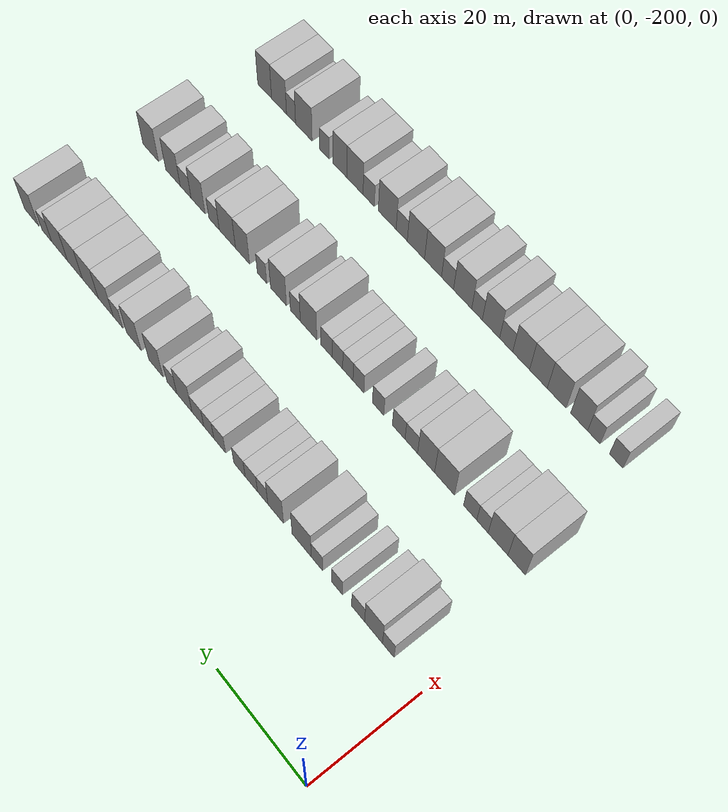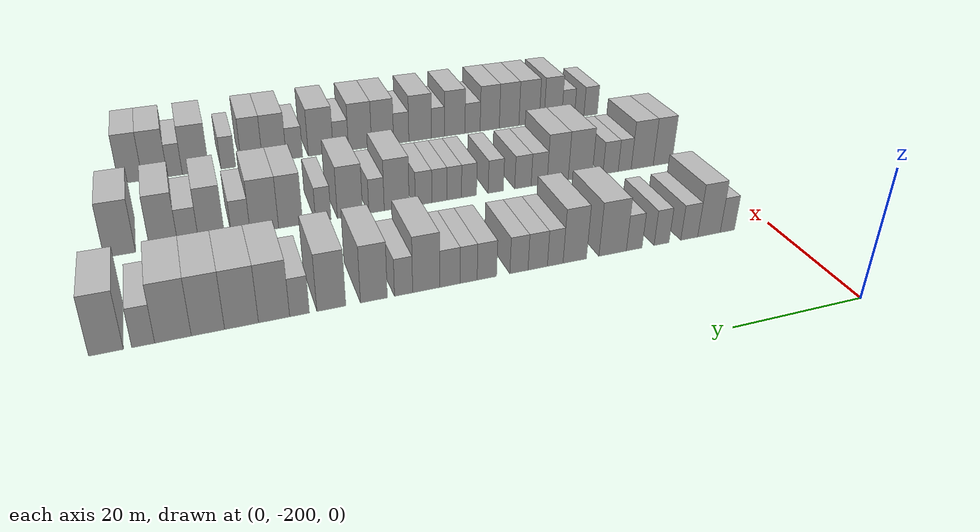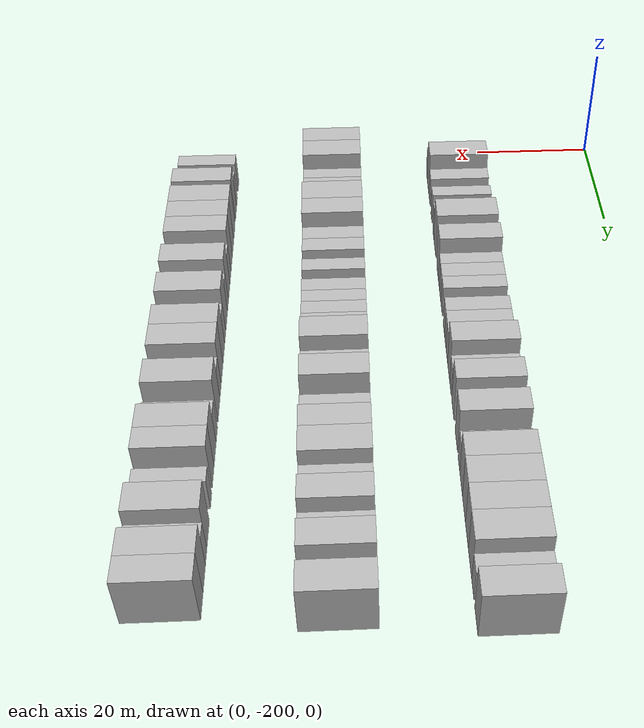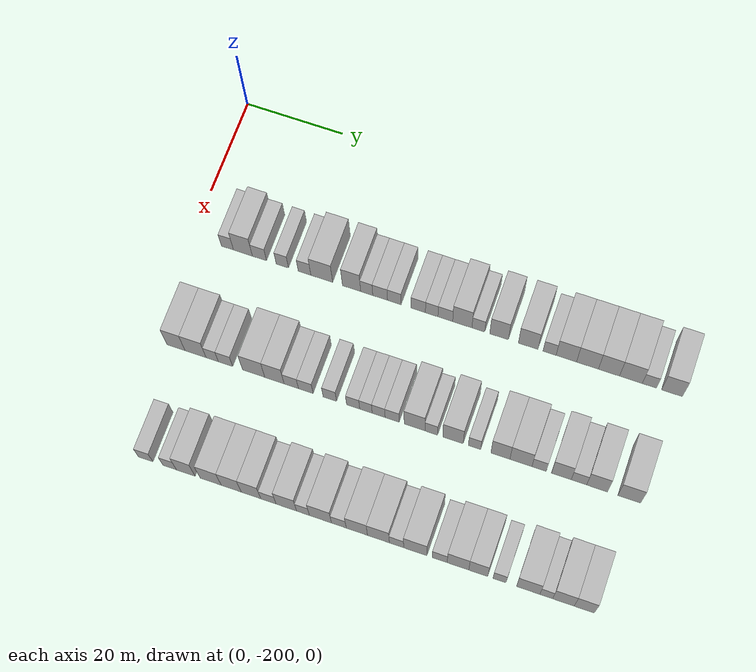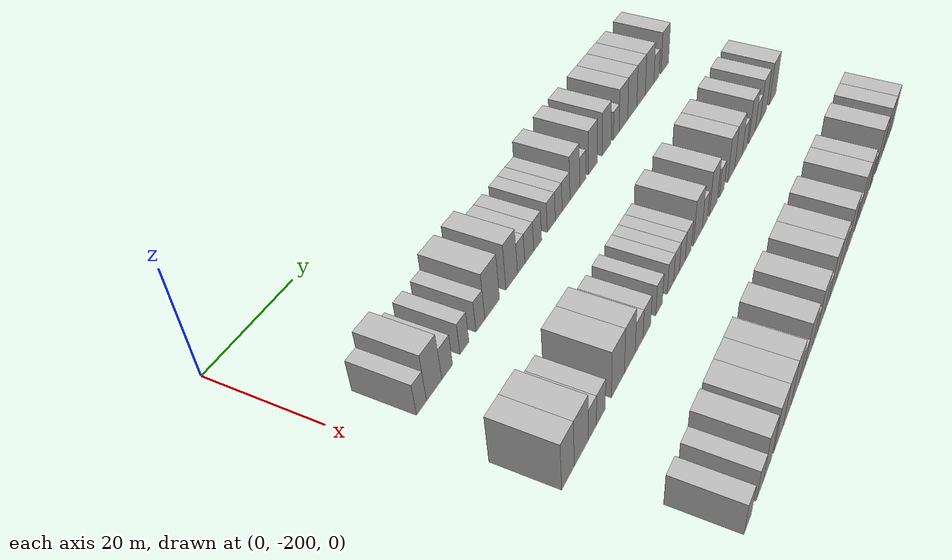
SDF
<sdf version="1.6">
 <world name="default">
  <model name="building_46">
   <static>1</static>
   <pose>25.0000 -192.6730 0 0.000000 0.000000 0.000000</pose>
   <link name="link">
    <pose>0 0 3.00 0 0 0</pose>
    <collision name="collision"><geometry><box><size>10.0000 2.5117 6.0000</size></box></geometry></collision>
    <visual name="visual">
     <cast_shadows>0</cast_shadows>
     <geometry><box><size>10.0000 2.5117 6.0000</size></box></geometry>
     <material>
      <script>
       <uri>model://HANNAS_wall/materials/scripts</uri>
       <uri>model://HANNAS_wall/materials/textures</uri>
       <name>vrc/HANNAS_wall</name>
      </script>
     </material>
    </visual>
   </link>
  </model>
  <model name="building_47">
   <static>1</static>
   <pose>25.0000 -189.4613 0 0.000000 0.000000 0.000000</pose>
   <link name="link">
    <pose>0 0 4.50 0 0 0</pose>
    <collision name="collision"><geometry><box><size>10.0000 3.9117 9.0000</size></box></geometry></collision>
    <visual name="visual">
     <cast_shadows>0</cast_shadows>
     <geometry><box><size>10.0000 3.9117 9.0000</size></box></geometry>
     <material>
      <script>
       <uri>model://HANNAS_wall/materials/scripts</uri>
       <uri>model://HANNAS_wall/materials/textures</uri>
       <name>vrc/HANNAS_wall</name>
      </script>
     </material>
    </visual>
   </link>
  </model>
  <model name="building_48">
   <static>1</static>
   <pose>25.0000 -186.0551 0 0.000000 0.000000 0.000000</pose>
   <link name="link">
    <pose>0 0 3.00 0 0 0</pose>
    <collision name="collision"><geometry><box><size>10.0000 2.9008 6.0000</size></box></geometry></collision>
    <visual name="visual">
     <cast_shadows>0</cast_shadows>
     <geometry><box><size>10.0000 2.9008 6.0000</size></box></geometry>
     <material>
      <script>
       <uri>model://HANNAS_wall/materials/scripts</uri>
       <uri>model://HANNAS_wall/materials/textures</uri>
       <name>vrc/HANNAS_wall</name>
      </script>
     </material>
    </visual>
   </link>
  </model>
  <model name="building_49">
   <static>1</static>
   <pose>25.0000 -181.3485 0 0.000000 0.000000 0.000000</pose>
   <link name="link">
    <pose>0 0 3.00 0 0 0</pose>
    <collision name="collision"><geometry><box><size>10.0000 2.5125 6.0000</size></box></geometry></collision>
    <visual name="visual">
     <cast_shadows>0</cast_shadows>
     <geometry><box><size>10.0000 2.5125 6.0000</size></box></geometry>
     <material>
      <script>
       <uri>model://HANNAS_wall/materials/scripts</uri>
       <uri>model://HANNAS_wall/materials/textures</uri>
       <name>vrc/HANNAS_wall</name>
      </script>
     </material>
    </visual>
   </link>
  </model>
  <model name="building_50">
   <static>1</static>
   <pose>25.0000 -176.7957 0 0.000000 0.000000 0.000000</pose>
   <link name="link">
    <pose>0 0 3.00 0 0 0</pose>
    <collision name="collision"><geometry><box><size>10.0000 2.5931 6.0000</size></box></geometry></collision>
    <visual name="visual">
     <cast_shadows>0</cast_shadows>
     <geometry><box><size>10.0000 2.5931 6.0000</size></box></geometry>
     <material>
      <script>
       <uri>model://HANNAS_wall/materials/scripts</uri>
       <uri>model://HANNAS_wall/materials/textures</uri>
       <name>vrc/HANNAS_wall</name>
      </script>
     </material>
    </visual>
   </link>
  </model>
  <model name="building_51">
   <static>1</static>
   <pose>25.0000 -173.2761 0 0.000000 0.000000 0.000000</pose>
   <link name="link">
    <pose>0 0 4.50 0 0 0</pose>
    <collision name="collision"><geometry><box><size>10.0000 4.4459 9.0000</size></box></geometry></collision>
    <visual name="visual">
     <cast_shadows>0</cast_shadows>
     <geometry><box><size>10.0000 4.4459 9.0000</size></box></geometry>
     <material>
      <script>
       <uri>model://HANNAS_wall/materials/scripts</uri>
       <uri>model://HANNAS_wall/materials/textures</uri>
       <name>vrc/HANNAS_wall</name>
      </script>
     </material>
    </visual>
   </link>
  </model>
  <model name="building_52">
   <static>1</static>
   <pose>25.0000 -167.1985 0 0.000000 0.000000 0.000000</pose>
   <link name="link">
    <pose>0 0 4.50 0 0 0</pose>
    <collision name="collision"><geometry><box><size>10.0000 3.7094 9.0000</size></box></geometry></collision>
    <visual name="visual">
     <cast_shadows>0</cast_shadows>
     <geometry><box><size>10.0000 3.7094 9.0000</size></box></geometry>
     <material>
      <script>
       <uri>model://HANNAS_wall/materials/scripts</uri>
       <uri>model://HANNAS_wall/materials/textures</uri>
       <name>vrc/HANNAS_wall</name>
      </script>
     </material>
    </visual>
   </link>
  </model>
  <model name="building_53">
   <static>1</static>
   <pose>25.0000 -164.1217 0 0.000000 0.000000 0.000000</pose>
   <link name="link">
    <pose>0 0 3.00 0 0 0</pose>
    <collision name="collision"><geometry><box><size>10.0000 2.4442 6.0000</size></box></geometry></collision>
    <visual name="visual">
     <cast_shadows>0</cast_shadows>
     <geometry><box><size>10.0000 2.4442 6.0000</size></box></geometry>
     <material>
      <script>
       <uri>model://HANNAS_wall/materials/scripts</uri>
       <uri>model://HANNAS_wall/materials/textures</uri>
       <name>vrc/HANNAS_wall</name>
      </script>
     </material>
    </visual>
   </link>
  </model>
  <model name="building_54">
   <static>1</static>
   <pose>25.0000 -161.4051 0 0.000000 0.000000 0.000000</pose>
   <link name="link">
    <pose>0 0 3.00 0 0 0</pose>
    <collision name="collision"><geometry><box><size>10.0000 2.9888 6.0000</size></box></geometry></collision>
    <visual name="visual">
     <cast_shadows>0</cast_shadows>
     <geometry><box><size>10.0000 2.9888 6.0000</size></box></geometry>
     <material>
      <script>
       <uri>model://HANNAS_wall/materials/scripts</uri>
       <uri>model://HANNAS_wall/materials/textures</uri>
       <name>vrc/HANNAS_wall</name>
      </script>
     </material>
    </visual>
   </link>
  </model>
  <model name="building_55">
   <static>1</static>
   <pose>25.0000 -158.5288 0 0.000000 0.000000 0.000000</pose>
   <link name="link">
    <pose>0 0 3.00 0 0 0</pose>
    <collision name="collision"><geometry><box><size>10.0000 2.7638 6.0000</size></box></geometry></collision>
    <visual name="visual">
     <cast_shadows>0</cast_shadows>
     <geometry><box><size>10.0000 2.7638 6.0000</size></box></geometry>
     <material>
      <script>
       <uri>model://HANNAS_wall/materials/scripts</uri>
       <uri>model://HANNAS_wall/materials/textures</uri>
       <name>vrc/HANNAS_wall</name>
      </script>
     </material>
    </visual>
   </link>
  </model>
  <model name="building_56">
   <static>1</static>
   <pose>25.0000 -153.6962 0 0.000000 0.000000 0.000000</pose>
   <link name="link">
    <pose>0 0 3.00 0 0 0</pose>
    <collision name="collision"><geometry><box><size>10.0000 2.9015 6.0000</size></box></geometry></collision>
    <visual name="visual">
     <cast_shadows>0</cast_shadows>
     <geometry><box><size>10.0000 2.9015 6.0000</size></box></geometry>
     <material>
      <script>
       <uri>model://HANNAS_wall/materials/scripts</uri>
       <uri>model://HANNAS_wall/materials/textures</uri>
       <name>vrc/HANNAS_wall</name>
      </script>
     </material>
    </visual>
   </link>
  </model>
  <model name="building_57">
   <static>1</static>
   <pose>25.0000 -150.9907 0 0.000000 0.000000 0.000000</pose>
   <link name="link">
    <pose>0 0 3.00 0 0 0</pose>
    <collision name="collision"><geometry><box><size>10.0000 2.5095 6.0000</size></box></geometry></collision>
    <visual name="visual">
     <cast_shadows>0</cast_shadows>
     <geometry><box><size>10.0000 2.5095 6.0000</size></box></geometry>
     <material>
      <script>
       <uri>model://HANNAS_wall/materials/scripts</uri>
       <uri>model://HANNAS_wall/materials/textures</uri>
       <name>vrc/HANNAS_wall</name>
      </script>
     </material>
    </visual>
   </link>
  </model>
  <model name="building_58">
   <static>1</static>
   <pose>25.0000 -148.2503 0 0.000000 0.000000 0.000000</pose>
   <link name="link">
    <pose>0 0 3.00 0 0 0</pose>
    <collision name="collision"><geometry><box><size>10.0000 2.9712 6.0000</size></box></geometry></collision>
    <visual name="visual">
     <cast_shadows>0</cast_shadows>
     <geometry><box><size>10.0000 2.9712 6.0000</size></box></geometry>
     <material>
      <script>
       <uri>model://HANNAS_wall/materials/scripts</uri>
       <uri>model://HANNAS_wall/materials/textures</uri>
       <name>vrc/HANNAS_wall</name>
      </script>
     </material>
    </visual>
   </link>
  </model>
  <model name="building_59">
   <static>1</static>
   <pose>25.0000 -144.8352 0 0.000000 0.000000 0.000000</pose>
   <link name="link">
    <pose>0 0 4.50 0 0 0</pose>
    <collision name="collision"><geometry><box><size>10.0000 3.8591 9.0000</size></box></geometry></collision>
    <visual name="visual">
     <cast_shadows>0</cast_shadows>
     <geometry><box><size>10.0000 3.8591 9.0000</size></box></geometry>
     <material>
      <script>
       <uri>model://HANNAS_wall/materials/scripts</uri>
       <uri>model://HANNAS_wall/materials/textures</uri>
       <name>vrc/HANNAS_wall</name>
      </script>
     </material>
    </visual>
   </link>
  </model>
  <model name="building_60">
   <static>1</static>
   <pose>25.0000 -141.6266 0 0.000000 0.000000 0.000000</pose>
   <link name="link">
    <pose>0 0 3.00 0 0 0</pose>
    <collision name="collision"><geometry><box><size>10.0000 2.5581 6.0000</size></box></geometry></collision>
    <visual name="visual">
     <cast_shadows>0</cast_shadows>
     <geometry><box><size>10.0000 2.5581 6.0000</size></box></geometry>
     <material>
      <script>
       <uri>model://HANNAS_wall/materials/scripts</uri>
       <uri>model://HANNAS_wall/materials/textures</uri>
       <name>vrc/HANNAS_wall</name>
      </script>
     </material>
    </visual>
   </link>
  </model>
  <model name="building_61">
   <static>1</static>
   <pose>25.0000 -137.4888 0 0.000000 0.000000 0.000000</pose>
   <link name="link">
    <pose>0 0 4.50 0 0 0</pose>
    <collision name="collision"><geometry><box><size>10.0000 3.7174 9.0000</size></box></geometry></collision>
    <visual name="visual">
     <cast_shadows>0</cast_shadows>
     <geometry><box><size>10.0000 3.7174 9.0000</size></box></geometry>
     <material>
      <script>
       <uri>model://HANNAS_wall/materials/scripts</uri>
       <uri>model://HANNAS_wall/materials/textures</uri>
       <name>vrc/HANNAS_wall</name>
      </script>
     </material>
    </visual>
   </link>
  </model>
  <model name="building_62">
   <static>1</static>
   <pose>25.0000 -131.6830 0 0.000000 0.000000 0.000000</pose>
   <link name="link">
    <pose>0 0 4.50 0 0 0</pose>
    <collision name="collision"><geometry><box><size>10.0000 3.8944 9.0000</size></box></geometry></collision>
    <visual name="visual">
     <cast_shadows>0</cast_shadows>
     <geometry><box><size>10.0000 3.8944 9.0000</size></box></geometry>
     <material>
      <script>
       <uri>model://HANNAS_wall/materials/scripts</uri>
       <uri>model://HANNAS_wall/materials/textures</uri>
       <name>vrc/HANNAS_wall</name>
      </script>
     </material>
    </visual>
   </link>
  </model>
  <model name="building_63">
   <static>1</static>
   <pose>25.0000 -127.4365 0 0.000000 0.000000 0.000000</pose>
   <link name="link">
    <pose>0 0 3.00 0 0 0</pose>
    <collision name="collision"><geometry><box><size>10.0000 2.5986 6.0000</size></box></geometry></collision>
    <visual name="visual">
     <cast_shadows>0</cast_shadows>
     <geometry><box><size>10.0000 2.5986 6.0000</size></box></geometry>
     <material>
      <script>
       <uri>model://HANNAS_wall/materials/scripts</uri>
       <uri>model://HANNAS_wall/materials/textures</uri>
       <name>vrc/HANNAS_wall</name>
      </script>
     </material>
    </visual>
   </link>
  </model>
  <model name="building_64">
   <static>1</static>
   <pose>25.0000 -124.1150 0 0.000000 0.000000 0.000000</pose>
   <link name="link">
    <pose>0 0 4.50 0 0 0</pose>
    <collision name="collision"><geometry><box><size>10.0000 4.0444 9.0000</size></box></geometry></collision>
    <visual name="visual">
     <cast_shadows>0</cast_shadows>
     <geometry><box><size>10.0000 4.0444 9.0000</size></box></geometry>
     <material>
      <script>
       <uri>model://HANNAS_wall/materials/scripts</uri>
       <uri>model://HANNAS_wall/materials/textures</uri>
       <name>vrc/HANNAS_wall</name>
      </script>
     </material>
    </visual>
   </link>
  </model>
  <model name="building_65">
   <static>1</static>
   <pose>25.0000 -119.9322 0 0.000000 0.000000 0.000000</pose>
   <link name="link">
    <pose>0 0 4.50 0 0 0</pose>
    <collision name="collision"><geometry><box><size>10.0000 4.3210 9.0000</size></box></geometry></collision>
    <visual name="visual">
     <cast_shadows>0</cast_shadows>
     <geometry><box><size>10.0000 4.3210 9.0000</size></box></geometry>
     <material>
      <script>
       <uri>model://HANNAS_wall/materials/scripts</uri>
       <uri>model://HANNAS_wall/materials/textures</uri>
       <name>vrc/HANNAS_wall</name>
      </script>
     </material>
    </visual>
   </link>
  </model>
  <model name="building_66">
   <static>1</static>
   <pose>25.0000 -115.6959 0 0.000000 0.000000 0.000000</pose>
   <link name="link">
    <pose>0 0 4.50 0 0 0</pose>
    <collision name="collision"><geometry><box><size>10.0000 4.1516 9.0000</size></box></geometry></collision>
    <visual name="visual">
     <cast_shadows>0</cast_shadows>
     <geometry><box><size>10.0000 4.1516 9.0000</size></box></geometry>
     <material>
      <script>
       <uri>model://HANNAS_wall/materials/scripts</uri>
       <uri>model://HANNAS_wall/materials/textures</uri>
       <name>vrc/HANNAS_wall</name>
      </script>
     </material>
    </visual>
   </link>
  </model>
  <model name="building_67">
   <static>1</static>
   <pose>25.0000 -111.3855 0 0.000000 0.000000 0.000000</pose>
   <link name="link">
    <pose>0 0 4.50 0 0 0</pose>
    <collision name="collision"><geometry><box><size>10.0000 4.4691 9.0000</size></box></geometry></collision>
    <visual name="visual">
     <cast_shadows>0</cast_shadows>
     <geometry><box><size>10.0000 4.4691 9.0000</size></box></geometry>
     <material>
      <script>
       <uri>model://HANNAS_wall/materials/scripts</uri>
       <uri>model://HANNAS_wall/materials/textures</uri>
       <name>vrc/HANNAS_wall</name>
      </script>
     </material>
    </visual>
   </link>
  </model>
  <model name="building_68">
   <static>1</static>
   <pose>25.0000 -107.7723 0 0.000000 0.000000 0.000000</pose>
   <link name="link">
    <pose>0 0 3.00 0 0 0</pose>
    <collision name="collision"><geometry><box><size>10.0000 2.7573 6.0000</size></box></geometry></collision>
    <visual name="visual">
     <cast_shadows>0</cast_shadows>
     <geometry><box><size>10.0000 2.7573 6.0000</size></box></geometry>
     <material>
      <script>
       <uri>model://HANNAS_wall/materials/scripts</uri>
       <uri>model://HANNAS_wall/materials/textures</uri>
       <name>vrc/HANNAS_wall</name>
      </script>
     </material>
    </visual>
   </link>
  </model>
  <model name="building_69">
   <static>1</static>
   <pose>25.0000 -103.3533 0 0.000000 0.000000 0.000000</pose>
   <link name="link">
    <pose>0 0 4.50 0 0 0</pose>
    <collision name="collision"><geometry><box><size>10.0000 4.0808 9.0000</size></box></geometry></collision>
    <visual name="visual">
     <cast_shadows>0</cast_shadows>
     <geometry><box><size>10.0000 4.0808 9.0000</size></box></geometry>
     <material>
      <script>
       <uri>model://HANNAS_wall/materials/scripts</uri>
       <uri>model://HANNAS_wall/materials/textures</uri>
       <name>vrc/HANNAS_wall</name>
      </script>
     </material>
    </visual>
   </link>
  </model>
  <model name="building_231">
   <static>1</static>
   <pose>47.0000 -194.5947 0 0.000000 0.000000 0.000000</pose>
   <link name="link">
    <pose>0 0 4.50 0 0 0</pose>
    <collision name="collision"><geometry><box><size>10.0000 3.6940 9.0000</size></box></geometry></collision>
    <visual name="visual">
     <cast_shadows>0</cast_shadows>
     <geometry><box><size>10.0000 3.6940 9.0000</size></box></geometry>
     <material>
      <script>
       <uri>model://HANNAS_wall/materials/scripts</uri>
       <uri>model://HANNAS_wall/materials/textures</uri>
       <name>vrc/HANNAS_wall</name>
      </script>
     </material>
    </visual>
   </link>
  </model>
  <model name="building_232">
   <static>1</static>
   <pose>47.0000 -190.6087 0 0.000000 0.000000 0.000000</pose>
   <link name="link">
    <pose>0 0 4.50 0 0 0</pose>
    <collision name="collision"><geometry><box><size>10.0000 4.2780 9.0000</size></box></geometry></collision>
    <visual name="visual">
     <cast_shadows>0</cast_shadows>
     <geometry><box><size>10.0000 4.2780 9.0000</size></box></geometry>
     <material>
      <script>
       <uri>model://HANNAS_wall/materials/scripts</uri>
       <uri>model://HANNAS_wall/materials/textures</uri>
       <name>vrc/HANNAS_wall</name>
      </script>
     </material>
    </visual>
   </link>
  </model>
  <model name="building_233">
   <static>1</static>
   <pose>47.0000 -187.2302 0 0.000000 0.000000 0.000000</pose>
   <link name="link">
    <pose>0 0 3.00 0 0 0</pose>
    <collision name="collision"><geometry><box><size>10.0000 2.4789 6.0000</size></box></geometry></collision>
    <visual name="visual">
     <cast_shadows>0</cast_shadows>
     <geometry><box><size>10.0000 2.4789 6.0000</size></box></geometry>
     <material>
      <script>
       <uri>model://HANNAS_wall/materials/scripts</uri>
       <uri>model://HANNAS_wall/materials/textures</uri>
       <name>vrc/HANNAS_wall</name>
      </script>
     </material>
    </visual>
   </link>
  </model>
  <model name="building_234">
   <static>1</static>
   <pose>47.0000 -184.5404 0 0.000000 0.000000 0.000000</pose>
   <link name="link">
    <pose>0 0 3.00 0 0 0</pose>
    <collision name="collision"><geometry><box><size>10.0000 2.9007 6.0000</size></box></geometry></collision>
    <visual name="visual">
     <cast_shadows>0</cast_shadows>
     <geometry><box><size>10.0000 2.9007 6.0000</size></box></geometry>
     <material>
      <script>
       <uri>model://HANNAS_wall/materials/scripts</uri>
       <uri>model://HANNAS_wall/materials/textures</uri>
       <name>vrc/HANNAS_wall</name>
      </script>
     </material>
    </visual>
   </link>
  </model>
  <model name="building_235">
   <static>1</static>
   <pose>47.0000 -178.8547 0 0.000000 0.000000 0.000000</pose>
   <link name="link">
    <pose>0 0 4.50 0 0 0</pose>
    <collision name="collision"><geometry><box><size>10.0000 4.4707 9.0000</size></box></geometry></collision>
    <visual name="visual">
     <cast_shadows>0</cast_shadows>
     <geometry><box><size>10.0000 4.4707 9.0000</size></box></geometry>
     <material>
      <script>
       <uri>model://HANNAS_wall/materials/scripts</uri>
       <uri>model://HANNAS_wall/materials/textures</uri>
       <name>vrc/HANNAS_wall</name>
      </script>
     </material>
    </visual>
   </link>
  </model>
  <model name="building_236">
   <static>1</static>
   <pose>47.0000 -174.6920 0 0.000000 0.000000 0.000000</pose>
   <link name="link">
    <pose>0 0 4.50 0 0 0</pose>
    <collision name="collision"><geometry><box><size>10.0000 3.8547 9.0000</size></box></geometry></collision>
    <visual name="visual">
     <cast_shadows>0</cast_shadows>
     <geometry><box><size>10.0000 3.8547 9.0000</size></box></geometry>
     <material>
      <script>
       <uri>model://HANNAS_wall/materials/scripts</uri>
       <uri>model://HANNAS_wall/materials/textures</uri>
       <name>vrc/HANNAS_wall</name>
      </script>
     </material>
    </visual>
   </link>
  </model>
  <model name="building_237">
   <static>1</static>
   <pose>47.0000 -171.3256 0 0.000000 0.000000 0.000000</pose>
   <link name="link">
    <pose>0 0 3.00 0 0 0</pose>
    <collision name="collision"><geometry><box><size>10.0000 2.8782 6.0000</size></box></geometry></collision>
    <visual name="visual">
     <cast_shadows>0</cast_shadows>
     <geometry><box><size>10.0000 2.8782 6.0000</size></box></geometry>
     <material>
      <script>
       <uri>model://HANNAS_wall/materials/scripts</uri>
       <uri>model://HANNAS_wall/materials/textures</uri>
       <name>vrc/HANNAS_wall</name>
      </script>
     </material>
    </visual>
   </link>
  </model>
  <model name="building_238">
   <static>1</static>
   <pose>47.0000 -168.4165 0 0.000000 0.000000 0.000000</pose>
   <link name="link">
    <pose>0 0 3.00 0 0 0</pose>
    <collision name="collision"><geometry><box><size>10.0000 2.9399 6.0000</size></box></geometry></collision>
    <visual name="visual">
     <cast_shadows>0</cast_shadows>
     <geometry><box><size>10.0000 2.9399 6.0000</size></box></geometry>
     <material>
      <script>
       <uri>model://HANNAS_wall/materials/scripts</uri>
       <uri>model://HANNAS_wall/materials/textures</uri>
       <name>vrc/HANNAS_wall</name>
      </script>
     </material>
    </visual>
   </link>
  </model>
  <model name="building_239">
   <static>1</static>
   <pose>47.0000 -163.6091 0 0.000000 0.000000 0.000000</pose>
   <link name="link">
    <pose>0 0 3.00 0 0 0</pose>
    <collision name="collision"><geometry><box><size>10.0000 2.6749 6.0000</size></box></geometry></collision>
    <visual name="visual">
     <cast_shadows>0</cast_shadows>
     <geometry><box><size>10.0000 2.6749 6.0000</size></box></geometry>
     <material>
      <script>
       <uri>model://HANNAS_wall/materials/scripts</uri>
       <uri>model://HANNAS_wall/materials/textures</uri>
       <name>vrc/HANNAS_wall</name>
      </script>
     </material>
    </visual>
   </link>
  </model>
  <model name="building_240">
   <static>1</static>
   <pose>47.0000 -158.9659 0 0.000000 0.000000 0.000000</pose>
   <link name="link">
    <pose>0 0 3.00 0 0 0</pose>
    <collision name="collision"><geometry><box><size>10.0000 2.6115 6.0000</size></box></geometry></collision>
    <visual name="visual">
     <cast_shadows>0</cast_shadows>
     <geometry><box><size>10.0000 2.6115 6.0000</size></box></geometry>
     <material>
      <script>
       <uri>model://HANNAS_wall/materials/scripts</uri>
       <uri>model://HANNAS_wall/materials/textures</uri>
       <name>vrc/HANNAS_wall</name>
      </script>
     </material>
    </visual>
   </link>
  </model>
  <model name="building_241">
   <static>1</static>
   <pose>47.0000 -156.4249 0 0.000000 0.000000 0.000000</pose>
   <link name="link">
    <pose>0 0 3.00 0 0 0</pose>
    <collision name="collision"><geometry><box><size>10.0000 2.4706 6.0000</size></box></geometry></collision>
    <visual name="visual">
     <cast_shadows>0</cast_shadows>
     <geometry><box><size>10.0000 2.4706 6.0000</size></box></geometry>
     <material>
      <script>
       <uri>model://HANNAS_wall/materials/scripts</uri>
       <uri>model://HANNAS_wall/materials/textures</uri>
       <name>vrc/HANNAS_wall</name>
      </script>
     </material>
    </visual>
   </link>
  </model>
  <model name="building_242">
   <static>1</static>
   <pose>47.0000 -153.9104 0 0.000000 0.000000 0.000000</pose>
   <link name="link">
    <pose>0 0 3.00 0 0 0</pose>
    <collision name="collision"><geometry><box><size>10.0000 2.5585 6.0000</size></box></geometry></collision>
    <visual name="visual">
     <cast_shadows>0</cast_shadows>
     <geometry><box><size>10.0000 2.5585 6.0000</size></box></geometry>
     <material>
      <script>
       <uri>model://HANNAS_wall/materials/scripts</uri>
       <uri>model://HANNAS_wall/materials/textures</uri>
       <name>vrc/HANNAS_wall</name>
      </script>
     </material>
    </visual>
   </link>
  </model>
  <model name="building_243">
   <static>1</static>
   <pose>47.0000 -151.2442 0 0.000000 0.000000 0.000000</pose>
   <link name="link">
    <pose>0 0 3.00 0 0 0</pose>
    <collision name="collision"><geometry><box><size>10.0000 2.7740 6.0000</size></box></geometry></collision>
    <visual name="visual">
     <cast_shadows>0</cast_shadows>
     <geometry><box><size>10.0000 2.7740 6.0000</size></box></geometry>
     <material>
      <script>
       <uri>model://HANNAS_wall/materials/scripts</uri>
       <uri>model://HANNAS_wall/materials/textures</uri>
       <name>vrc/HANNAS_wall</name>
      </script>
     </material>
    </visual>
   </link>
  </model>
  <model name="building_244">
   <static>1</static>
   <pose>47.0000 -146.8153 0 0.000000 0.000000 0.000000</pose>
   <link name="link">
    <pose>0 0 4.50 0 0 0</pose>
    <collision name="collision"><geometry><box><size>10.0000 4.0838 9.0000</size></box></geometry></collision>
    <visual name="visual">
     <cast_shadows>0</cast_shadows>
     <geometry><box><size>10.0000 4.0838 9.0000</size></box></geometry>
     <material>
      <script>
       <uri>model://HANNAS_wall/materials/scripts</uri>
       <uri>model://HANNAS_wall/materials/textures</uri>
       <name>vrc/HANNAS_wall</name>
      </script>
     </material>
    </visual>
   </link>
  </model>
  <model name="building_245">
   <static>1</static>
   <pose>47.0000 -143.5286 0 0.000000 0.000000 0.000000</pose>
   <link name="link">
    <pose>0 0 3.00 0 0 0</pose>
    <collision name="collision"><geometry><box><size>10.0000 2.4895 6.0000</size></box></geometry></collision>
    <visual name="visual">
     <cast_shadows>0</cast_shadows>
     <geometry><box><size>10.0000 2.4895 6.0000</size></box></geometry>
     <material>
      <script>
       <uri>model://HANNAS_wall/materials/scripts</uri>
       <uri>model://HANNAS_wall/materials/textures</uri>
       <name>vrc/HANNAS_wall</name>
      </script>
     </material>
    </visual>
   </link>
  </model>
  <model name="building_246">
   <static>1</static>
   <pose>47.0000 -139.2747 0 0.000000 0.000000 0.000000</pose>
   <link name="link">
    <pose>0 0 4.50 0 0 0</pose>
    <collision name="collision"><geometry><box><size>10.0000 4.0185 9.0000</size></box></geometry></collision>
    <visual name="visual">
     <cast_shadows>0</cast_shadows>
     <geometry><box><size>10.0000 4.0185 9.0000</size></box></geometry>
     <material>
      <script>
       <uri>model://HANNAS_wall/materials/scripts</uri>
       <uri>model://HANNAS_wall/materials/textures</uri>
       <name>vrc/HANNAS_wall</name>
      </script>
     </material>
    </visual>
   </link>
  </model>
  <model name="building_247">
   <static>1</static>
   <pose>47.0000 -135.0592 0 0.000000 0.000000 0.000000</pose>
   <link name="link">
    <pose>0 0 3.00 0 0 0</pose>
    <collision name="collision"><geometry><box><size>10.0000 2.4124 6.0000</size></box></geometry></collision>
    <visual name="visual">
     <cast_shadows>0</cast_shadows>
     <geometry><box><size>10.0000 2.4124 6.0000</size></box></geometry>
     <material>
      <script>
       <uri>model://HANNAS_wall/materials/scripts</uri>
       <uri>model://HANNAS_wall/materials/textures</uri>
       <name>vrc/HANNAS_wall</name>
      </script>
     </material>
    </visual>
   </link>
  </model>
  <model name="building_248">
   <static>1</static>
   <pose>47.0000 -130.0013 0 0.000000 0.000000 0.000000</pose>
   <link name="link">
    <pose>0 0 4.50 0 0 0</pose>
    <collision name="collision"><geometry><box><size>10.0000 3.7034 9.0000</size></box></geometry></collision>
    <visual name="visual">
     <cast_shadows>0</cast_shadows>
     <geometry><box><size>10.0000 3.7034 9.0000</size></box></geometry>
     <material>
      <script>
       <uri>model://HANNAS_wall/materials/scripts</uri>
       <uri>model://HANNAS_wall/materials/textures</uri>
       <name>vrc/HANNAS_wall</name>
      </script>
     </material>
    </visual>
   </link>
  </model>
  <model name="building_249">
   <static>1</static>
   <pose>47.0000 -126.0079 0 0.000000 0.000000 0.000000</pose>
   <link name="link">
    <pose>0 0 4.50 0 0 0</pose>
    <collision name="collision"><geometry><box><size>10.0000 4.2836 9.0000</size></box></geometry></collision>
    <visual name="visual">
     <cast_shadows>0</cast_shadows>
     <geometry><box><size>10.0000 4.2836 9.0000</size></box></geometry>
     <material>
      <script>
       <uri>model://HANNAS_wall/materials/scripts</uri>
       <uri>model://HANNAS_wall/materials/textures</uri>
       <name>vrc/HANNAS_wall</name>
      </script>
     </material>
    </visual>
   </link>
  </model>
  <model name="building_250">
   <static>1</static>
   <pose>47.0000 -122.4765 0 0.000000 0.000000 0.000000</pose>
   <link name="link">
    <pose>0 0 3.00 0 0 0</pose>
    <collision name="collision"><geometry><box><size>10.0000 2.7792 6.0000</size></box></geometry></collision>
    <visual name="visual">
     <cast_shadows>0</cast_shadows>
     <geometry><box><size>10.0000 2.7792 6.0000</size></box></geometry>
     <material>
      <script>
       <uri>model://HANNAS_wall/materials/scripts</uri>
       <uri>model://HANNAS_wall/materials/textures</uri>
       <name>vrc/HANNAS_wall</name>
      </script>
     </material>
    </visual>
   </link>
  </model>
  <model name="building_251">
   <static>1</static>
   <pose>47.0000 -118.1774 0 0.000000 0.000000 0.000000</pose>
   <link name="link">
    <pose>0 0 4.50 0 0 0</pose>
    <collision name="collision"><geometry><box><size>10.0000 3.8190 9.0000</size></box></geometry></collision>
    <visual name="visual">
     <cast_shadows>0</cast_shadows>
     <geometry><box><size>10.0000 3.8190 9.0000</size></box></geometry>
     <material>
      <script>
       <uri>model://HANNAS_wall/materials/scripts</uri>
       <uri>model://HANNAS_wall/materials/textures</uri>
       <name>vrc/HANNAS_wall</name>
      </script>
     </material>
    </visual>
   </link>
  </model>
  <model name="building_252">
   <static>1</static>
   <pose>47.0000 -114.7752 0 0.000000 0.000000 0.000000</pose>
   <link name="link">
    <pose>0 0 3.00 0 0 0</pose>
    <collision name="collision"><geometry><box><size>10.0000 2.9853 6.0000</size></box></geometry></collision>
    <visual name="visual">
     <cast_shadows>0</cast_shadows>
     <geometry><box><size>10.0000 2.9853 6.0000</size></box></geometry>
     <material>
      <script>
       <uri>model://HANNAS_wall/materials/scripts</uri>
       <uri>model://HANNAS_wall/materials/textures</uri>
       <name>vrc/HANNAS_wall</name>
      </script>
     </material>
    </visual>
   </link>
  </model>
  <model name="building_253">
   <static>1</static>
   <pose>47.0000 -111.2822 0 0.000000 0.000000 0.000000</pose>
   <link name="link">
    <pose>0 0 4.50 0 0 0</pose>
    <collision name="collision"><geometry><box><size>10.0000 4.0008 9.0000</size></box></geometry></collision>
    <visual name="visual">
     <cast_shadows>0</cast_shadows>
     <geometry><box><size>10.0000 4.0008 9.0000</size></box></geometry>
     <material>
      <script>
       <uri>model://HANNAS_wall/materials/scripts</uri>
       <uri>model://HANNAS_wall/materials/textures</uri>
       <name>vrc/HANNAS_wall</name>
      </script>
     </material>
    </visual>
   </link>
  </model>
  <model name="building_254">
   <static>1</static>
   <pose>47.0000 -105.0933 0 0.000000 0.000000 0.000000</pose>
   <link name="link">
    <pose>0 0 4.50 0 0 0</pose>
    <collision name="collision"><geometry><box><size>10.0000 4.3769 9.0000</size></box></geometry></collision>
    <visual name="visual">
     <cast_shadows>0</cast_shadows>
     <geometry><box><size>10.0000 4.3769 9.0000</size></box></geometry>
     <material>
      <script>
       <uri>model://HANNAS_wall/materials/scripts</uri>
       <uri>model://HANNAS_wall/materials/textures</uri>
       <name>vrc/HANNAS_wall</name>
      </script>
     </material>
    </visual>
   </link>
  </model>
  <model name="building_423">
   <static>1</static>
   <pose>69.0000 -191.8491 0 0.000000 0.000000 0.000000</pose>
   <link name="link">
    <pose>0 0 3.00 0 0 0</pose>
    <collision name="collision"><geometry><box><size>10.0000 2.8754 6.0000</size></box></geometry></collision>
    <visual name="visual">
     <cast_shadows>0</cast_shadows>
     <geometry><box><size>10.0000 2.8754 6.0000</size></box></geometry>
     <material>
      <script>
       <uri>model://HANNAS_wall/materials/scripts</uri>
       <uri>model://HANNAS_wall/materials/textures</uri>
       <name>vrc/HANNAS_wall</name>
      </script>
     </material>
    </visual>
   </link>
  </model>
  <model name="building_424">
   <static>1</static>
   <pose>69.0000 -187.0621 0 0.000000 0.000000 0.000000</pose>
   <link name="link">
    <pose>0 0 3.00 0 0 0</pose>
    <collision name="collision"><geometry><box><size>10.0000 2.6986 6.0000</size></box></geometry></collision>
    <visual name="visual">
     <cast_shadows>0</cast_shadows>
     <geometry><box><size>10.0000 2.6986 6.0000</size></box></geometry>
     <material>
      <script>
       <uri>model://HANNAS_wall/materials/scripts</uri>
       <uri>model://HANNAS_wall/materials/textures</uri>
       <name>vrc/HANNAS_wall</name>
      </script>
     </material>
    </visual>
   </link>
  </model>
  <model name="building_425">
   <static>1</static>
   <pose>69.0000 -183.8665 0 0.000000 0.000000 0.000000</pose>
   <link name="link">
    <pose>0 0 4.50 0 0 0</pose>
    <collision name="collision"><geometry><box><size>10.0000 3.6927 9.0000</size></box></geometry></collision>
    <visual name="visual">
     <cast_shadows>0</cast_shadows>
     <geometry><box><size>10.0000 3.6927 9.0000</size></box></geometry>
     <material>
      <script>
       <uri>model://HANNAS_wall/materials/scripts</uri>
       <uri>model://HANNAS_wall/materials/textures</uri>
       <name>vrc/HANNAS_wall</name>
      </script>
     </material>
    </visual>
   </link>
  </model>
  <model name="building_426">
   <static>1</static>
   <pose>69.0000 -178.9422 0 0.000000 0.000000 0.000000</pose>
   <link name="link">
    <pose>0 0 4.50 0 0 0</pose>
    <collision name="collision"><geometry><box><size>10.0000 4.1559 9.0000</size></box></geometry></collision>
    <visual name="visual">
     <cast_shadows>0</cast_shadows>
     <geometry><box><size>10.0000 4.1559 9.0000</size></box></geometry>
     <material>
      <script>
       <uri>model://HANNAS_wall/materials/scripts</uri>
       <uri>model://HANNAS_wall/materials/textures</uri>
       <name>vrc/HANNAS_wall</name>
      </script>
     </material>
    </visual>
   </link>
  </model>
  <model name="building_427">
   <static>1</static>
   <pose>69.0000 -174.8765 0 0.000000 0.000000 0.000000</pose>
   <link name="link">
    <pose>0 0 4.50 0 0 0</pose>
    <collision name="collision"><geometry><box><size>10.0000 3.9755 9.0000</size></box></geometry></collision>
    <visual name="visual">
     <cast_shadows>0</cast_shadows>
     <geometry><box><size>10.0000 3.9755 9.0000</size></box></geometry>
     <material>
      <script>
       <uri>model://HANNAS_wall/materials/scripts</uri>
       <uri>model://HANNAS_wall/materials/textures</uri>
       <name>vrc/HANNAS_wall</name>
      </script>
     </material>
    </visual>
   </link>
  </model>
  <model name="building_428">
   <static>1</static>
   <pose>69.0000 -170.9735 0 0.000000 0.000000 0.000000</pose>
   <link name="link">
    <pose>0 0 4.50 0 0 0</pose>
    <collision name="collision"><geometry><box><size>10.0000 3.8304 9.0000</size></box></geometry></collision>
    <visual name="visual">
     <cast_shadows>0</cast_shadows>
     <geometry><box><size>10.0000 3.8304 9.0000</size></box></geometry>
     <material>
      <script>
       <uri>model://HANNAS_wall/materials/scripts</uri>
       <uri>model://HANNAS_wall/materials/textures</uri>
       <name>vrc/HANNAS_wall</name>
      </script>
     </material>
    </visual>
   </link>
  </model>
  <model name="building_429">
   <static>1</static>
   <pose>69.0000 -167.5648 0 0.000000 0.000000 0.000000</pose>
   <link name="link">
    <pose>0 0 3.00 0 0 0</pose>
    <collision name="collision"><geometry><box><size>10.0000 2.9871 6.0000</size></box></geometry></collision>
    <visual name="visual">
     <cast_shadows>0</cast_shadows>
     <geometry><box><size>10.0000 2.9871 6.0000</size></box></geometry>
     <material>
      <script>
       <uri>model://HANNAS_wall/materials/scripts</uri>
       <uri>model://HANNAS_wall/materials/textures</uri>
       <name>vrc/HANNAS_wall</name>
      </script>
     </material>
    </visual>
   </link>
  </model>
  <model name="building_430">
   <static>1</static>
   <pose>69.0000 -164.0609 0 0.000000 0.000000 0.000000</pose>
   <link name="link">
    <pose>0 0 4.50 0 0 0</pose>
    <collision name="collision"><geometry><box><size>10.0000 4.0208 9.0000</size></box></geometry></collision>
    <visual name="visual">
     <cast_shadows>0</cast_shadows>
     <geometry><box><size>10.0000 4.0208 9.0000</size></box></geometry>
     <material>
      <script>
       <uri>model://HANNAS_wall/materials/scripts</uri>
       <uri>model://HANNAS_wall/materials/textures</uri>
       <name>vrc/HANNAS_wall</name>
      </script>
     </material>
    </visual>
   </link>
  </model>
  <model name="building_431">
   <static>1</static>
   <pose>69.0000 -160.8070 0 0.000000 0.000000 0.000000</pose>
   <link name="link">
    <pose>0 0 3.00 0 0 0</pose>
    <collision name="collision"><geometry><box><size>10.0000 2.4870 6.0000</size></box></geometry></collision>
    <visual name="visual">
     <cast_shadows>0</cast_shadows>
     <geometry><box><size>10.0000 2.4870 6.0000</size></box></geometry>
     <material>
      <script>
       <uri>model://HANNAS_wall/materials/scripts</uri>
       <uri>model://HANNAS_wall/materials/textures</uri>
       <name>vrc/HANNAS_wall</name>
      </script>
     </material>
    </visual>
   </link>
  </model>
  <model name="building_432">
   <static>1</static>
   <pose>69.0000 -157.4078 0 0.000000 0.000000 0.000000</pose>
   <link name="link">
    <pose>0 0 4.50 0 0 0</pose>
    <collision name="collision"><geometry><box><size>10.0000 4.3114 9.0000</size></box></geometry></collision>
    <visual name="visual">
     <cast_shadows>0</cast_shadows>
     <geometry><box><size>10.0000 4.3114 9.0000</size></box></geometry>
     <material>
      <script>
       <uri>model://HANNAS_wall/materials/scripts</uri>
       <uri>model://HANNAS_wall/materials/textures</uri>
       <name>vrc/HANNAS_wall</name>
      </script>
     </material>
    </visual>
   </link>
  </model>
  <model name="building_433">
   <static>1</static>
   <pose>69.0000 -153.8144 0 0.000000 0.000000 0.000000</pose>
   <link name="link">
    <pose>0 0 3.00 0 0 0</pose>
    <collision name="collision"><geometry><box><size>10.0000 2.8754 6.0000</size></box></geometry></collision>
    <visual name="visual">
     <cast_shadows>0</cast_shadows>
     <geometry><box><size>10.0000 2.8754 6.0000</size></box></geometry>
     <material>
      <script>
       <uri>model://HANNAS_wall/materials/scripts</uri>
       <uri>model://HANNAS_wall/materials/textures</uri>
       <name>vrc/HANNAS_wall</name>
      </script>
     </material>
    </visual>
   </link>
  </model>
  <model name="building_434">
   <static>1</static>
   <pose>69.0000 -150.3299 0 0.000000 0.000000 0.000000</pose>
   <link name="link">
    <pose>0 0 4.50 0 0 0</pose>
    <collision name="collision"><geometry><box><size>10.0000 4.0935 9.0000</size></box></geometry></collision>
    <visual name="visual">
     <cast_shadows>0</cast_shadows>
     <geometry><box><size>10.0000 4.0935 9.0000</size></box></geometry>
     <material>
      <script>
       <uri>model://HANNAS_wall/materials/scripts</uri>
       <uri>model://HANNAS_wall/materials/textures</uri>
       <name>vrc/HANNAS_wall</name>
      </script>
     </material>
    </visual>
   </link>
  </model>
  <model name="building_435">
   <static>1</static>
   <pose>69.0000 -146.1698 0 0.000000 0.000000 0.000000</pose>
   <link name="link">
    <pose>0 0 4.50 0 0 0</pose>
    <collision name="collision"><geometry><box><size>10.0000 4.2268 9.0000</size></box></geometry></collision>
    <visual name="visual">
     <cast_shadows>0</cast_shadows>
     <geometry><box><size>10.0000 4.2268 9.0000</size></box></geometry>
     <material>
      <script>
       <uri>model://HANNAS_wall/materials/scripts</uri>
       <uri>model://HANNAS_wall/materials/textures</uri>
       <name>vrc/HANNAS_wall</name>
      </script>
     </material>
    </visual>
   </link>
  </model>
  <model name="building_436">
   <static>1</static>
   <pose>69.0000 -142.6721 0 0.000000 0.000000 0.000000</pose>
   <link name="link">
    <pose>0 0 3.00 0 0 0</pose>
    <collision name="collision"><geometry><box><size>10.0000 2.7686 6.0000</size></box></geometry></collision>
    <visual name="visual">
     <cast_shadows>0</cast_shadows>
     <geometry><box><size>10.0000 2.7686 6.0000</size></box></geometry>
     <material>
      <script>
       <uri>model://HANNAS_wall/materials/scripts</uri>
       <uri>model://HANNAS_wall/materials/textures</uri>
       <name>vrc/HANNAS_wall</name>
      </script>
     </material>
    </visual>
   </link>
  </model>
  <model name="building_437">
   <static>1</static>
   <pose>69.0000 -139.0545 0 0.000000 0.000000 0.000000</pose>
   <link name="link">
    <pose>0 0 4.50 0 0 0</pose>
    <collision name="collision"><geometry><box><size>10.0000 4.4665 9.0000</size></box></geometry></collision>
    <visual name="visual">
     <cast_shadows>0</cast_shadows>
     <geometry><box><size>10.0000 4.4665 9.0000</size></box></geometry>
     <material>
      <script>
       <uri>model://HANNAS_wall/materials/scripts</uri>
       <uri>model://HANNAS_wall/materials/textures</uri>
       <name>vrc/HANNAS_wall</name>
      </script>
     </material>
    </visual>
   </link>
  </model>
  <model name="building_438">
   <static>1</static>
   <pose>69.0000 -134.3860 0 0.000000 0.000000 0.000000</pose>
   <link name="link">
    <pose>0 0 3.00 0 0 0</pose>
    <collision name="collision"><geometry><box><size>10.0000 2.8705 6.0000</size></box></geometry></collision>
    <visual name="visual">
     <cast_shadows>0</cast_shadows>
     <geometry><box><size>10.0000 2.8705 6.0000</size></box></geometry>
     <material>
      <script>
       <uri>model://HANNAS_wall/materials/scripts</uri>
       <uri>model://HANNAS_wall/materials/textures</uri>
       <name>vrc/HANNAS_wall</name>
      </script>
     </material>
    </visual>
   </link>
  </model>
  <model name="building_439">
   <static>1</static>
   <pose>69.0000 -130.8817 0 0.000000 0.000000 0.000000</pose>
   <link name="link">
    <pose>0 0 4.50 0 0 0</pose>
    <collision name="collision"><geometry><box><size>10.0000 4.1382 9.0000</size></box></geometry></collision>
    <visual name="visual">
     <cast_shadows>0</cast_shadows>
     <geometry><box><size>10.0000 4.1382 9.0000</size></box></geometry>
     <material>
      <script>
       <uri>model://HANNAS_wall/materials/scripts</uri>
       <uri>model://HANNAS_wall/materials/textures</uri>
       <name>vrc/HANNAS_wall</name>
      </script>
     </material>
    </visual>
   </link>
  </model>
  <model name="building_440">
   <static>1</static>
   <pose>69.0000 -127.0123 0 0.000000 0.000000 0.000000</pose>
   <link name="link">
    <pose>0 0 4.50 0 0 0</pose>
    <collision name="collision"><geometry><box><size>10.0000 3.6005 9.0000</size></box></geometry></collision>
    <visual name="visual">
     <cast_shadows>0</cast_shadows>
     <geometry><box><size>10.0000 3.6005 9.0000</size></box></geometry>
     <material>
      <script>
       <uri>model://HANNAS_wall/materials/scripts</uri>
       <uri>model://HANNAS_wall/materials/textures</uri>
       <name>vrc/HANNAS_wall</name>
      </script>
     </material>
    </visual>
   </link>
  </model>
  <model name="building_441">
   <static>1</static>
   <pose>69.0000 -122.9656 0 0.000000 0.000000 0.000000</pose>
   <link name="link">
    <pose>0 0 3.00 0 0 0</pose>
    <collision name="collision"><geometry><box><size>10.0000 2.4930 6.0000</size></box></geometry></collision>
    <visual name="visual">
     <cast_shadows>0</cast_shadows>
     <geometry><box><size>10.0000 2.4930 6.0000</size></box></geometry>
     <material>
      <script>
       <uri>model://HANNAS_wall/materials/scripts</uri>
       <uri>model://HANNAS_wall/materials/textures</uri>
       <name>vrc/HANNAS_wall</name>
      </script>
     </material>
    </visual>
   </link>
  </model>
  <model name="building_442">
   <static>1</static>
   <pose>69.0000 -117.5099 0 0.000000 0.000000 0.000000</pose>
   <link name="link">
    <pose>0 0 4.50 0 0 0</pose>
    <collision name="collision"><geometry><box><size>10.0000 4.4183 9.0000</size></box></geometry></collision>
    <visual name="visual">
     <cast_shadows>0</cast_shadows>
     <geometry><box><size>10.0000 4.4183 9.0000</size></box></geometry>
     <material>
      <script>
       <uri>model://HANNAS_wall/materials/scripts</uri>
       <uri>model://HANNAS_wall/materials/textures</uri>
       <name>vrc/HANNAS_wall</name>
      </script>
     </material>
    </visual>
   </link>
  </model>
  <model name="building_443">
   <static>1</static>
   <pose>69.0000 -114.0834 0 0.000000 0.000000 0.000000</pose>
   <link name="link">
    <pose>0 0 3.00 0 0 0</pose>
    <collision name="collision"><geometry><box><size>10.0000 2.4348 6.0000</size></box></geometry></collision>
    <visual name="visual">
     <cast_shadows>0</cast_shadows>
     <geometry><box><size>10.0000 2.4348 6.0000</size></box></geometry>
     <material>
      <script>
       <uri>model://HANNAS_wall/materials/scripts</uri>
       <uri>model://HANNAS_wall/materials/textures</uri>
       <name>vrc/HANNAS_wall</name>
      </script>
     </material>
    </visual>
   </link>
  </model>
  <model name="building_444">
   <static>1</static>
   <pose>69.0000 -110.8398 0 0.000000 0.000000 0.000000</pose>
   <link name="link">
    <pose>0 0 4.50 0 0 0</pose>
    <collision name="collision"><geometry><box><size>10.0000 4.0523 9.0000</size></box></geometry></collision>
    <visual name="visual">
     <cast_shadows>0</cast_shadows>
     <geometry><box><size>10.0000 4.0523 9.0000</size></box></geometry>
     <material>
      <script>
       <uri>model://HANNAS_wall/materials/scripts</uri>
       <uri>model://HANNAS_wall/materials/textures</uri>
       <name>vrc/HANNAS_wall</name>
      </script>
     </material>
    </visual>
   </link>
  </model>
  <model name="building_445">
   <static>1</static>
   <pose>69.0000 -106.9119 0 0.000000 0.000000 0.000000</pose>
   <link name="link">
    <pose>0 0 4.50 0 0 0</pose>
    <collision name="collision"><geometry><box><size>10.0000 3.8034 9.0000</size></box></geometry></collision>
    <visual name="visual">
     <cast_shadows>0</cast_shadows>
     <geometry><box><size>10.0000 3.8034 9.0000</size></box></geometry>
     <material>
      <script>
       <uri>model://HANNAS_wall/materials/scripts</uri>
       <uri>model://HANNAS_wall/materials/textures</uri>
       <name>vrc/HANNAS_wall</name>
      </script>
     </material>
    </visual>
   </link>
  </model>
 </world>
</sdf>
